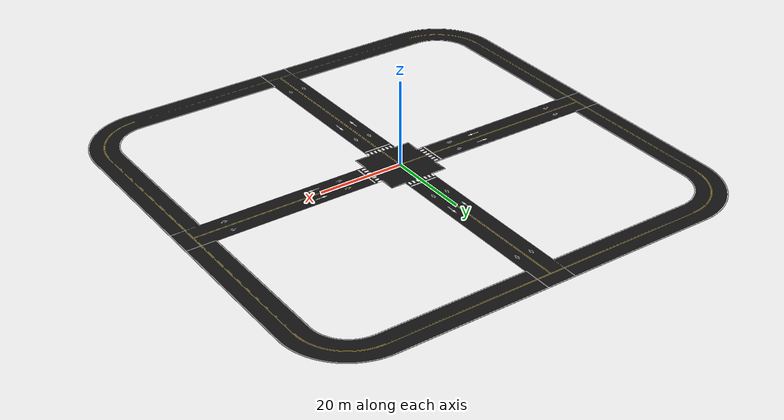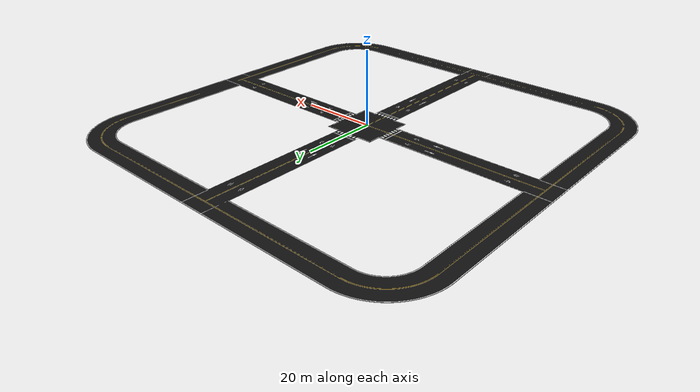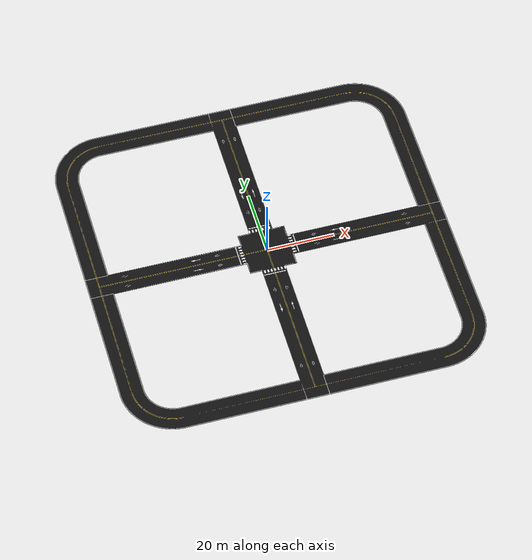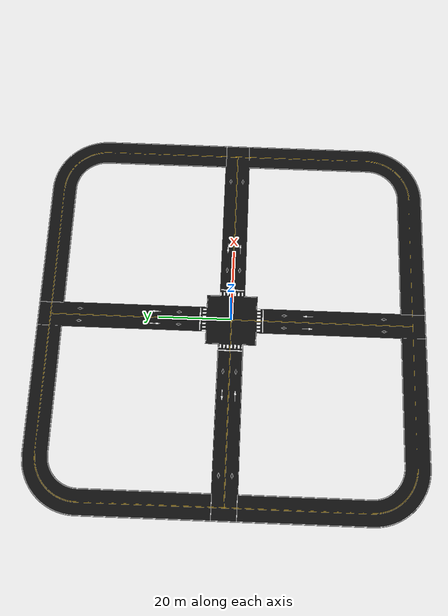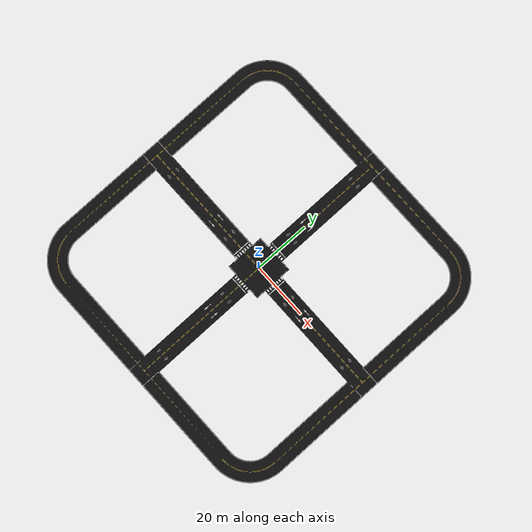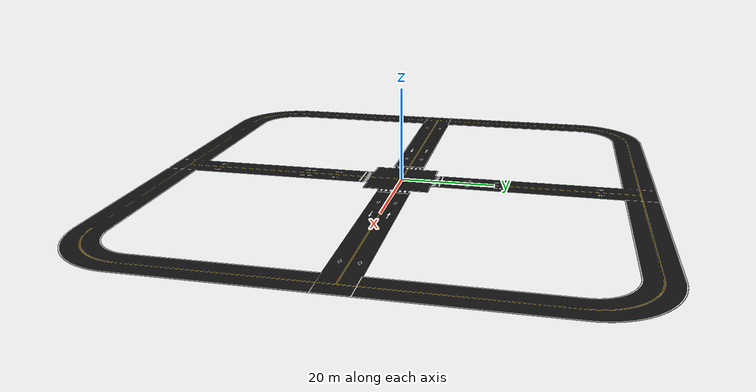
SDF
<?xml version="1.0" ?>
<sdf version="1.9">

  <world name="square_intersection_loop">

    <gravity>0 0 -9.80665</gravity>

    <spherical_coordinates>
      <surface_model>EARTH_WGS84</surface_model>
      <world_frame_orientation>ENU</world_frame_orientation>
      <latitude_deg>37.5665</latitude_deg>
      <longitude_deg>126.9780</longitude_deg>
      <elevation>0.0</elevation>
      <heading_deg>0</heading_deg>
    </spherical_coordinates>

    <physics name="default_physics" type="dart">
      <max_step_size>0.001</max_step_size>
      <real_time_factor>1.0</real_time_factor>
      <real_time_update_rate>1000</real_time_update_rate>
    </physics>

    <scene>
      <ambient>0.45 0.45 0.45 1</ambient>
      <background>0.75 0.78 0.80 1</background>
      <shadows>true</shadows>
    </scene>

    <light name="sun" type="directional">
      <pose>0 0 80 0 0 0</pose>
      <cast_shadows>true</cast_shadows>
      <direction>-0.45 0.20 -0.87</direction>
      <diffuse>0.85 0.85 0.85 1</diffuse>
      <specular>0.2 0.2 0.2 1</specular>
    </light>

    <!-- Asphalt -->

    <model name="asphalt_road_collision">

      <static>true</static>

      <link name="road_link">

        <collision name="road_collision">

          <geometry>
            <mesh>
              <uri>model://square_intersection_gazebo_map/meshes/road_asphalt.stl</uri>
            </mesh>
          </geometry>

          <surface>

            <friction>
              <ode>
                <mu>1.0</mu>
                <mu2>1.0</mu2>
              </ode>
            </friction>

            <contact>
              <ode>
                <kp>10000000</kp>
                <kd>1</kd>
              </ode>
            </contact>

          </surface>

        </collision>

        <visual name="road_visual">

          <geometry>
            <mesh>
              <uri>model://square_intersection_gazebo_map/meshes/road_asphalt.stl</uri>
            </mesh>
          </geometry>

          <material>
            <ambient>0.05 0.05 0.05 1</ambient>
            <diffuse>0.07 0.07 0.07 1</diffuse>
            <specular>0.01 0.01 0.01 1</specular>
          </material>

        </visual>

      </link>

    </model>

    <!-- Yellow centerlines -->

    <model name="yellow_centerlines">

      <static>true</static>

      <link name="yellow_link">

        <visual name="yellow_visual">

          <geometry>
            <mesh>
              <uri>model://square_intersection_gazebo_map/meshes/yellow_centerlines.stl</uri>
            </mesh>
          </geometry>

          <material>
            <ambient>1.0 0.76 0.0 1</ambient>
            <diffuse>1.0 0.76 0.0 1</diffuse>
          </material>

        </visual>

      </link>

    </model>

    <!-- White edge lines -->

    <model name="white_edge_lines">

      <static>true</static>

      <link name="white_link">

        <visual name="white_visual">

          <geometry>
            <mesh>
              <uri>model://square_intersection_gazebo_map/meshes/white_edge_lines.stl</uri>
            </mesh>
          </geometry>

          <material>
            <ambient>1 1 1 1</ambient>
            <diffuse>1 1 1 1</diffuse>
          </material>

        </visual>

      </link>

    </model>

    <!-- White detailed road markings -->

    <model name="white_details">

      <static>true</static>

      <link name="white_details_link">

        <visual name="white_details_visual">

          <geometry>
            <mesh>
              <uri>model://square_intersection_gazebo_map/meshes/white_straight_details.stl</uri>
            </mesh>
          </geometry>

          <material>
            <ambient>1 1 1 1</ambient>
            <diffuse>1 1 1 1</diffuse>
          </material>

        </visual>

      </link>

    </model>

  </world>

</sdf>
